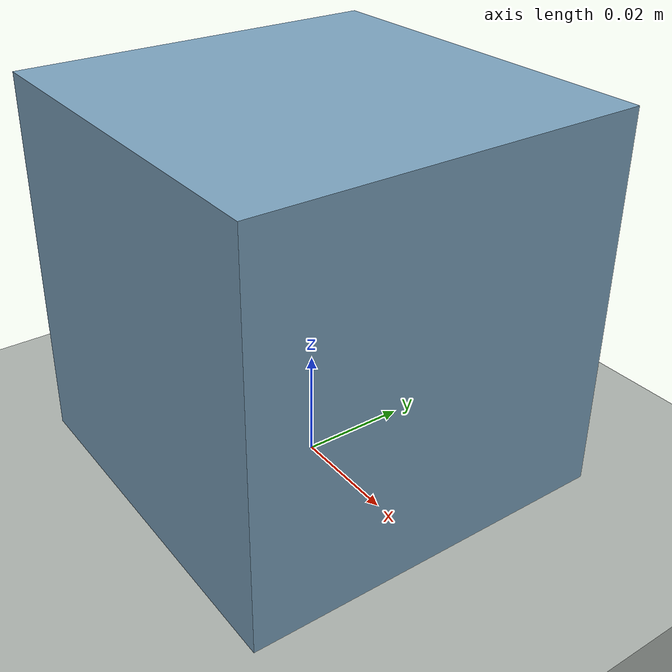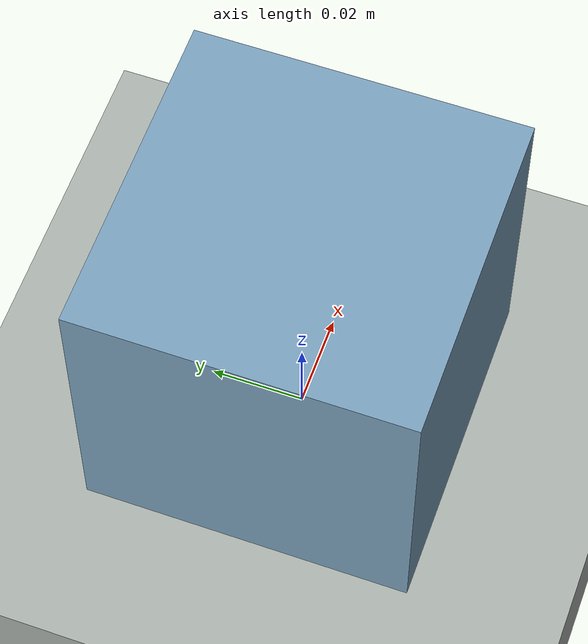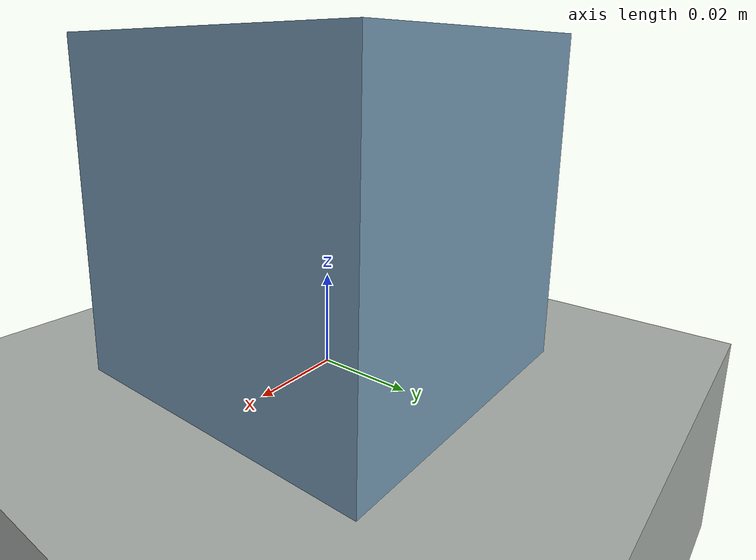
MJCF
<mujoco model="grasp_base_scene">
  <compiler angle="radian" coordinate="local"/>
  <option timestep="0.002" gravity="0 0 -9.81" integrator="implicitfast">
    <flag contact="enable" gravity="enable"/>
  </option>

  <statistic center="0 0 0.18" extent="0.75"/>

  <visual>
    <global azimuth="135" elevation="-25" offwidth="640" offheight="480"/>
    <headlight ambient="0.35 0.35 0.35" diffuse="0.35 0.35 0.35" specular="0.015 0.015 0.015"/>
    <quality shadowsize="4096"/>
  </visual>

  <default>
    <geom condim="4" friction="0.9 0.01 0.001" solref="0.01 1" solimp="0.95 0.99 0.001"/>
  </default>

  <asset>
    <texture name="sky" type="skybox" builtin="gradient" rgb1="0.96 0.97 0.98" rgb2="0.82 0.86 0.90" width="512" height="3072"/>
    <texture name="table_tex" type="2d" builtin="checker" rgb1="0.72 0.74 0.72" rgb2="0.62 0.65 0.63" width="512" height="512"/>
    <material name="table_mat" texture="table_tex" texrepeat="4 4" texuniform="true" specular="0.08" shininess="0.15" reflectance="0.02"/>
    <material name="object_placeholder_mat" rgba="0.48 0.63 0.74 1" specular="0.12" shininess="0.25"/>
  </asset>

  <worldbody>
    <light name="scene_light" pos="1.0 1.0 1.5" dir="-0.2 -0.2 -1" specular="0.3 0.3 0.3" directional="true" castshadow="false"/>

    <!-- Fixed egocentric workspace camera. Render at 640 x 480. -->
    <camera name="ego" pos="0 -0.55 0.60" xyaxes="1 0 0 0 0.737154 0.675725" fovy="60"/>
    <camera name="ego_opposite" pos="0 0.55 0.60" xyaxes="-1 0 0 0 -0.737154 0.9" fovy="60"/>

    <!-- The table top is exactly z=0 in world coordinates. -->
    <geom
      name="table"
      type="box"
      pos="0 0 -0.025"
      size="0.45 0.45 0.025"
      material="table_mat"
      priority="1"
      condim="6"
      friction="1.5 0.02 0.1"
    />

    <body name="hand_mount" pos="0 0 0.40">
      <site name="hand_mount_frame" type="sphere" size="0.006" rgba="0.25 0.55 0.85 0.65" group="4"/>
      <!-- Under-wrist forward view; the hand stays near the upper image edge. -->
      <camera
        name="wrist"
        pos="0 -0.075 -0.045"
        xyaxes="-1 0 0 0 0.983870 -0.178885"
        fovy="90"
      />
    </body>

    <!-- Replace the placeholder geom with visual and collision object meshes. -->
    <body name="object" pos="0 0 0.035">
      <freejoint name="object_joint"/>
      <inertial pos="0 0 0" mass="0.10" diaginertia="0.0001 0.0001 0.0001"/>
      <geom name="object_placeholder" type="box" size="0.035 0.035 0.035" material="object_placeholder_mat"/>
    </body>
  </worldbody>
</mujoco>
